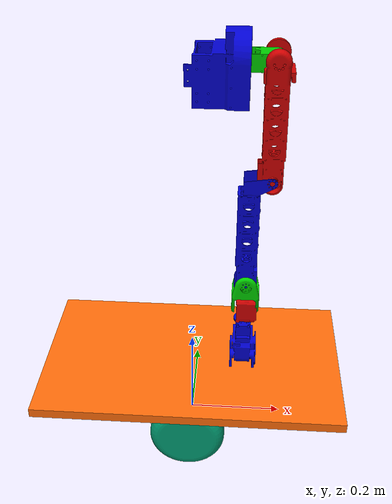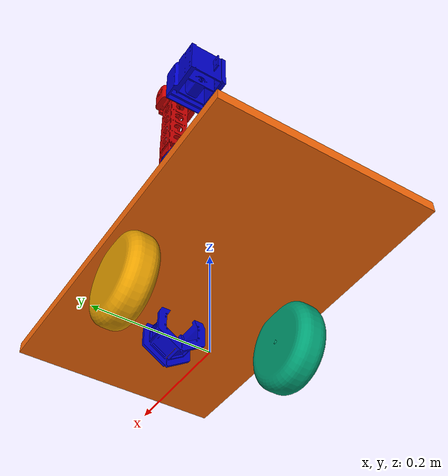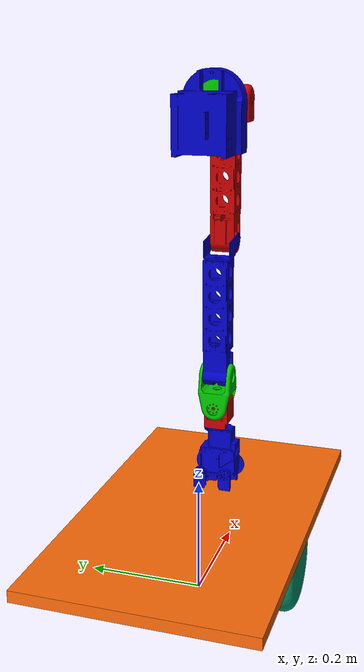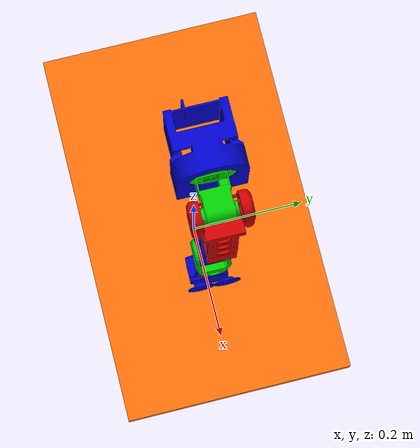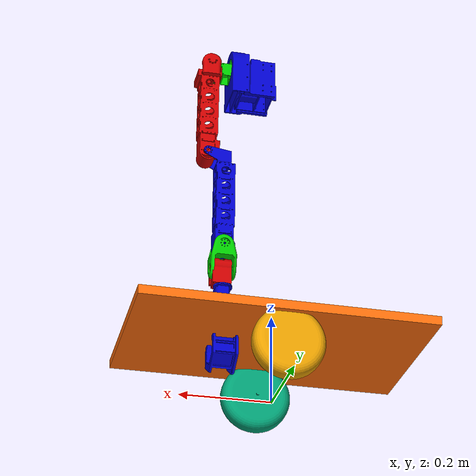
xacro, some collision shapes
<?xml version="1.0"?>
<robot name="interaction_robot" xmlns:xacro="http://www.ros.org/wiki/xacro">

	<!--Constants for robot dimensions -->
	<xacro:property name="PI" value="3.1415926535897931" />

	<!-- Import Rviz color -->
	<xacro:include filename="$(find hir_description)/urdf/materials.xacro" />

	<!-- Import chassis parts -->
	<xacro:include filename="$(find hir_description)/urdf/base/base.urdf.xacro" />

	<!-- Import manipulator parts -->
	<xacro:include filename="$(find hir_description)/urdf/manipulator/manipulator.urdf.xacro"/>

</robot>

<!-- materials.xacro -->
<robot xmlns:xacro="http://www.ros.org/wiki/xacro">

	<xacro:macro name="default_color" params="name color">
		<material name="${name}">
			<color rgba="${color}" />
		</material>
	</xacro:macro>

	<xacro:default_color name="black" color="0.0 0.0 0.0 1.0" />
	<xacro:default_color name="blue" color="0.0 0.0 0.8 1.0" />
	<xacro:default_color name="green" color="0.0 0.8 0.0 1.0" />
	<xacro:default_color name="grey" color="0.2 0.2 0.2 1.0" />
	<xacro:default_color name="orange" color="${255/255} ${108/255} ${10/255} 1.0" />
	<xacro:default_color name="brown" color="${255/255} ${207/255} ${195/255} 1.0" />
	<xacro:default_color name="red" color="0.8 0.0 0.0 1.0" />
	<xacro:default_color name="white" color="1.0 1.0 1.0 1.0" />

</robot>

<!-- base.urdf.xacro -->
<robot xmlns:xacro="http://www.ros.org/wiki/xacro">

  <!-- Import gazebo -->
  <xacro:include filename="$(find hir_description)/urdf/base/base.gazebo.xacro"/>
  <xacro:include filename="$(find hir_description)/urdf/wheel/wheel.gazebo.xacro"/>

  <!-- Import wheels -->
  <xacro:include filename="$(find hir_description)/urdf/wheel/wheel.urdf.xacro"/>

  <!-- wheel transmission -->
  <xacro:include filename="$(find hir_description)/urdf/wheel/wheel.transmission.xacro"/>

  <!-- Base Link -->
  <link name="base_link">
	<collision>
		<origin xyz="0 0 0.14" rpy="0 0 0" />
		<geometry>
			<box size="0.645 0.385 0.02" />
		</geometry>
	</collision>

	<collision>
		<origin xyz="0 0 0.74" rpy="0 0 0" />
		<geometry>
			<box size="0.020 0.040 1.20" />
		</geometry>
	</collision>

	<collision>
		<origin xyz="-0.185 -0.0875 0.05" rpy="0 1.5707 1.5707" />
		<geometry>
			<cylinder length="0.03" radius="0.0485" />
		</geometry>
	</collision>

	<collision>
		<origin xyz="-0.185 0.0875 0.05" rpy="0 1.5707 1.5707" />
		<geometry>
			<cylinder length="0.03" radius="0.0487" />
		</geometry>
	</collision>

	<collision>
		<origin xyz="0.18 -0.0875 0.05" rpy="0 1.5707 1.5707" />
		<geometry>
			<cylinder length="0.03" radius="0.0487" />
		</geometry>
	</collision>

	<collision>
		<origin xyz="0.18 0.0875 0.05" rpy="0 1.5707 1.5707" />
		<geometry>
			<cylinder length="0.03" radius="0.0487" />
		</geometry>
	</collision>

	<visual>
      <origin xyz="0.02 0 0.42" rpy="1.5707 0 1.5707"/>
      <geometry>
		<mesh filename="package://hir_description/meshes/STL/base.stl" />
      </geometry>
      <material name="orange"/>
    </visual>
    <inertial>
       <mass value="20" />
       <origin xyz="0 0 0" rpy="0 0 0"/>
       <inertia ixx="1" ixy="0" ixz="0" iyy="1" iyz="0" izz="1" />
    </inertial>
  </link>

  <!-- linking wheel to base -->
  <joint type="fixed" name="visual_left_wheel_hinge">
    <origin xyz="0 0.15 0.0725" rpy="0 0 0"/>
    <child link="visual_left_wheel">visual_left_wheel</child>
    <parent link="base_link">base_link</parent>
    <axis xyz="0 1 0"/>
  </joint>

  <joint type="revolute" name="left_wheel_hinge">
    <origin xyz="0 0.15 0.0727" rpy="0 0 0"/>
    <child link="left_wheel">left_wheel</child>
    <parent link="base_link">base_link</parent>
    <axis xyz="0 1 0"/>
    <limit effort="100" velocity="100.0"  lower="-5000" upper="5000" />
  </joint>

  <joint type="fixed" name="visual_right_wheel_hinge">
    <origin xyz="0 -0.15 0.0725" rpy="0 0 0"/>
    <child link="visual_right_wheel">visual_right_wheel</child>
    <parent link="base_link">base_link</parent>
    <axis xyz="0 1 0"/>
  </joint>

  <joint type="revolute" name="right_wheel_hinge">
    <origin xyz="0 -0.15 0.0727" rpy="0 0 0"/>
    <child link="right_wheel">right_wheel</child>
    <parent link="base_link">base_link</parent>
    <axis xyz="0 1 0"/>
    <limit effort="100" velocity="100.0"  lower="-5000" upper="5000" />
  </joint>

</robot>

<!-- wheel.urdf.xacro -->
<robot>

  <link name="visual_left_wheel">
    <visual name="visual">
      <origin xyz="0 0.03 0" rpy="0 3.1415 1.5707"/>
      <geometry>
		<mesh filename="package://hir_description/meshes/STL/wheel.stl" />
      </geometry>
    </visual>
  </link>

  <link name="left_wheel">
    <collision name="collision">
      <origin xyz="0 -0 0" rpy="0 1.5707 1.5707"/>
      <geometry>
         <cylinder  length="0.03" radius="0.0725"/>
      </geometry>
    </collision>
    <inertial>
      <mass value="1" />
      <origin xyz="0 0.0 0"/>
      <inertia ixx="0.1" ixy="0" ixz="0" iyy="0.1" iyz="0" izz="0.1" />
    </inertial>
  </link>

  <link name="visual_right_wheel">
    <visual name="visual">
      <origin xyz="0 -0.03 0" rpy="0 0 1.5707"/>
      <geometry>
		<mesh filename="package://hir_description/meshes/STL/wheel.stl"/>
      </geometry>
    </visual>
  </link>

  <link name="right_wheel">
    <collision name="collision">
      <origin xyz="0 -0 0" rpy="0 1.5707 1.5707"/>
      <geometry>
         <cylinder  length="0.03" radius="0.0725"/>
      </geometry>
    </collision>
    <inertial>
      <mass value="1" />
      <origin xyz="0 0.0 0"/>
      <inertia ixx="0.1" ixy="0" ixz="0" iyy="0.1" iyz="0" izz="0.1" />
    </inertial>
  </link>

</robot>

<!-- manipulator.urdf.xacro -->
<robot xmlns:xacro="http://www.ros.org/wiki/xacro">

	<!-- import gazebo files -->
	<xacro:include filename="$(find hir_description)/urdf/manipulator/manipulator.gazebo.xacro" />

	<!-- import transmission -->
	<xacro:include filename="$(find hir_description)/urdf/manipulator/manipulator.transmission.xacro" />

  <!-- joint 0 -->
  <joint name="shoulder_slider" type="prismatic">
    <origin xyz="0.01 0 0.79" rpy="0 0 -1.5707"/>
    <parent link="base_link"/>
    <child link="shoulder_link"/>
    <axis xyz="0 0 1"/>
    <limit effort="1000" lower="0" upper="0.4" velocity="1.0"/>
  </joint>

  <link name="shoulder_link">
    <inertial>
      <mass value="0.5"/>
      <origin xyz="0 0 0"/>
      <inertia ixx="1.0" ixy="0.0" ixz="0.0" iyy="1.0" iyz="0.0" izz="1.0"/>
    </inertial>
    <visual>
      <origin xyz="0 0.035 0" rpy="1.5707 0 3.1415"/>
      <geometry>
		<mesh filename="package://hir_description/meshes/STL/joint0.stl" />
      </geometry>
      <material name="blue">
        <color rgba="0 0 .8 1"/>
      </material>
    </visual>
    <collision>
      <origin xyz="0 0.035 0" rpy="1.5707 0 3.1415"/>
      <geometry>
        <box size="0.0330 0.28 0.0320"/>
      </geometry>
    </collision>
  </link>

  <!-- joint 1 -->
  <joint name="shoulder_roll_joint" type="revolute">
    <origin xyz="0 0.1 0.03" rpy="0 0 0"/>
    <parent link="shoulder_link"/>
    <child link="shoulder_roll_link"/>
    <axis xyz="0 1 0"/>
    <limit lower="-1" upper="1" effort="30" velocity="1.571"/>
  </joint>

  <link name="shoulder_roll_link">
    <inertial>
      <mass value="0.5"/>
      <origin xyz="0 0 0"/>
      <inertia ixx="1.0" ixy="0.0" ixz="0.0" iyy="1.0" iyz="0.0" izz="1.0"/>
    </inertial>
    <visual>
      <origin xyz="0 0 0" rpy="1.5707 1.5707 0"/>
      <geometry>
		<mesh filename="package://hir_description/meshes/STL/joint1.stl" />
      </geometry>
      <material name="green"/>
    </visual>
    <collision>
      <origin xyz="0 0 0" rpy="1.5707 1.5707 0"/>
      <geometry>
        <box size="0.0330 0.05 0.0320"/>
      </geometry>
    </collision>
  </link>

  <!-- joint 2 -->
  <joint name="shoulder_pitch_joint" type="revolute">
    <origin xyz="0 0.04 0" rpy="0 0 0"/>
    <parent link="shoulder_roll_link"/>
    <child link="shoulder_pitch_link"/>
    <axis xyz="1.0 0.001 0.0"/>
    <limit lower="0" upper="3.14" effort="30" velocity="1.571"/>
  </joint>

  <link name="shoulder_pitch_link">
    <inertial>
      <mass value="0.5"/>
      <origin xyz="0 0 0"/>
      <inertia ixx="1.0" ixy="0.0" ixz="0.0" iyy="1.0" iyz="0.0" izz="1.0"/>
    </inertial>
    <visual>
      <origin xyz="0 0 -0.1" rpy="3.1415 0 1.5707"/>
      <geometry>
		<mesh filename="package://hir_description/meshes/STL/joint2.stl" />
      </geometry>
      <material name="red"/>
    </visual>
    <collision>
      <origin xyz="0 0 -0.1" rpy="3.1415 0 1.5707"/>
      <geometry>
        <box size="0.0330 0.0320 0.180"/>
      </geometry>
    </collision>
  </link>

  <!-- joint 3 -->
  <joint name="elbow_pitch_joint" type="revolute">
    <origin xyz="0 0.001 -0.224" rpy="0 0 0"/>
    <parent link="shoulder_pitch_link"/>
    <child link="elbow_pitch_link"/>
    <axis xyz="1 0 0"/>
    <limit lower="0" upper="3.0" effort="30" velocity="1.571"/>
  </joint>

  <link name="elbow_pitch_link">
    <inertial>
      <mass value="0.5"/>
      <origin xyz="0 0 0"/>
      <inertia ixx="1.0" ixy="0.0" ixz="0.0" iyy="1.0" iyz="0.0" izz="1.0"/>
    </inertial>
    <visual>
      <origin xyz=" 0 -0.035 -0.12 " rpy="3.1415 0 -1.5707"/>
      <geometry>
		<mesh filename="package://hir_description/meshes/STL/joint3.stl" />
	  </geometry>
      <material name="blue"/>
    </visual>
    <collision>
      <origin xyz=" 0 -0.035 -0.12 " rpy="3.1415 0 -1.5707"/>
      <geometry>
        <box size="0.0330 0.0320 0.180"/>
      </geometry>
    </collision>
  </link>

  <!-- joint 4 -->
  <joint name="wrist_pitch_joint" type="revolute">
    <origin xyz="0 -0.04 -0.239" rpy="0 0 0"/>
    <parent link="elbow_pitch_link"/>
    <child link="wrist_pitch_link"/>
    <axis xyz="1.0 0.001 0.0"/>
    <limit lower="-1.57" upper="1.57" effort="30" velocity="1.571"/>
  </joint>

  <link name="wrist_pitch_link">
    <inertial>
      <mass value="0.5"/>
      <origin xyz="0 0 0"/>
      <inertia ixx="1.0" ixy="0.0" ixz="0.0" iyy="1.0" iyz="0.0" izz="1.0"/>
    </inertial>
    <visual>
      <origin xyz=" 0 0 -0.026 " rpy="0 0 0"/>
      <geometry>
		<mesh filename="package://hir_description/meshes/STL/joint4.stl" />
	  </geometry>
      <material name="green"/>
    </visual>
    <collision>
      <origin xyz=" 0 0 -0.026 " rpy="0 0 0"/>
      <geometry>
        <box size="0.0330 0.0320 0.0320"/>
      </geometry>
    </collision>
  </link>

  <!-- joint 5 -->
  <joint name="wrist_yaw_joint" type="revolute">
    <origin xyz="0 0 -0.0525" rpy="0 0 0"/>
    <parent link="wrist_pitch_link"/>
    <child link="wrist_yaw_link"/>
    <axis xyz="0 1 0"/>
    <limit lower="-1.57" upper="1.57" effort="30" velocity="1.571"/>
  </joint>

  <link name="wrist_yaw_link">
    <inertial>
      <mass value="0.5"/>
      <origin xyz="0 0 0"/>
      <inertia ixx="1.0" ixy="0.0" ixz="0.0" iyy="1.0" iyz="0.0" izz="1.0"/>
    </inertial>
    <visual>
      <origin xyz="0 0 -0.016" rpy="-1.5707 0 0"/>
      <geometry>
		<mesh filename="package://hir_description/meshes/STL/joint5.stl"/>
	  </geometry>
      <material name="red"/>
    </visual>
    <collision>
      <origin xyz="0 0 -0.016" rpy="-1.5707 0 0"/>
      <geometry>
        <box size="0.0330 0.0320 0.0320"/>
      </geometry>
    </collision>
  </link>

  <!--joint 6 + hand -->
  <joint name="wrist_roll_joint" type="revolute">
    <origin xyz="0 0 -0.05" rpy="0 0 0"/>
    <parent link="wrist_yaw_link"/>
    <child link="wrist_roll_link"/>
    <axis xyz="0 0.01 1.0"/>
    <limit lower="-1.57" upper="1.57" effort="30" velocity="1.571"/>
  </joint>

  <link name="wrist_roll_link">
    <inertial>
      <mass value="0.5"/>
      <origin xyz="0 0 0"/>
      <inertia ixx="1.0" ixy="0.0" ixz="0.0" iyy="1.0" iyz="0.0" izz="1.0"/>
    </inertial>
    <visual>
      <origin xyz="0 0 -0.075" rpy="0 0 0"/>
      <geometry>
		<mesh filename="package://hir_description/meshes/STL/joint6.stl" />
	  </geometry>
      <material name="blue"/>
    </visual>
    <collision>
      <origin xyz="0 0 -0.075" rpy="0 0 0"/>
      <geometry>
        <box size="0.0330 0.0320 0.0320"/>
      </geometry>
    </collision>
  </link>

</robot>
